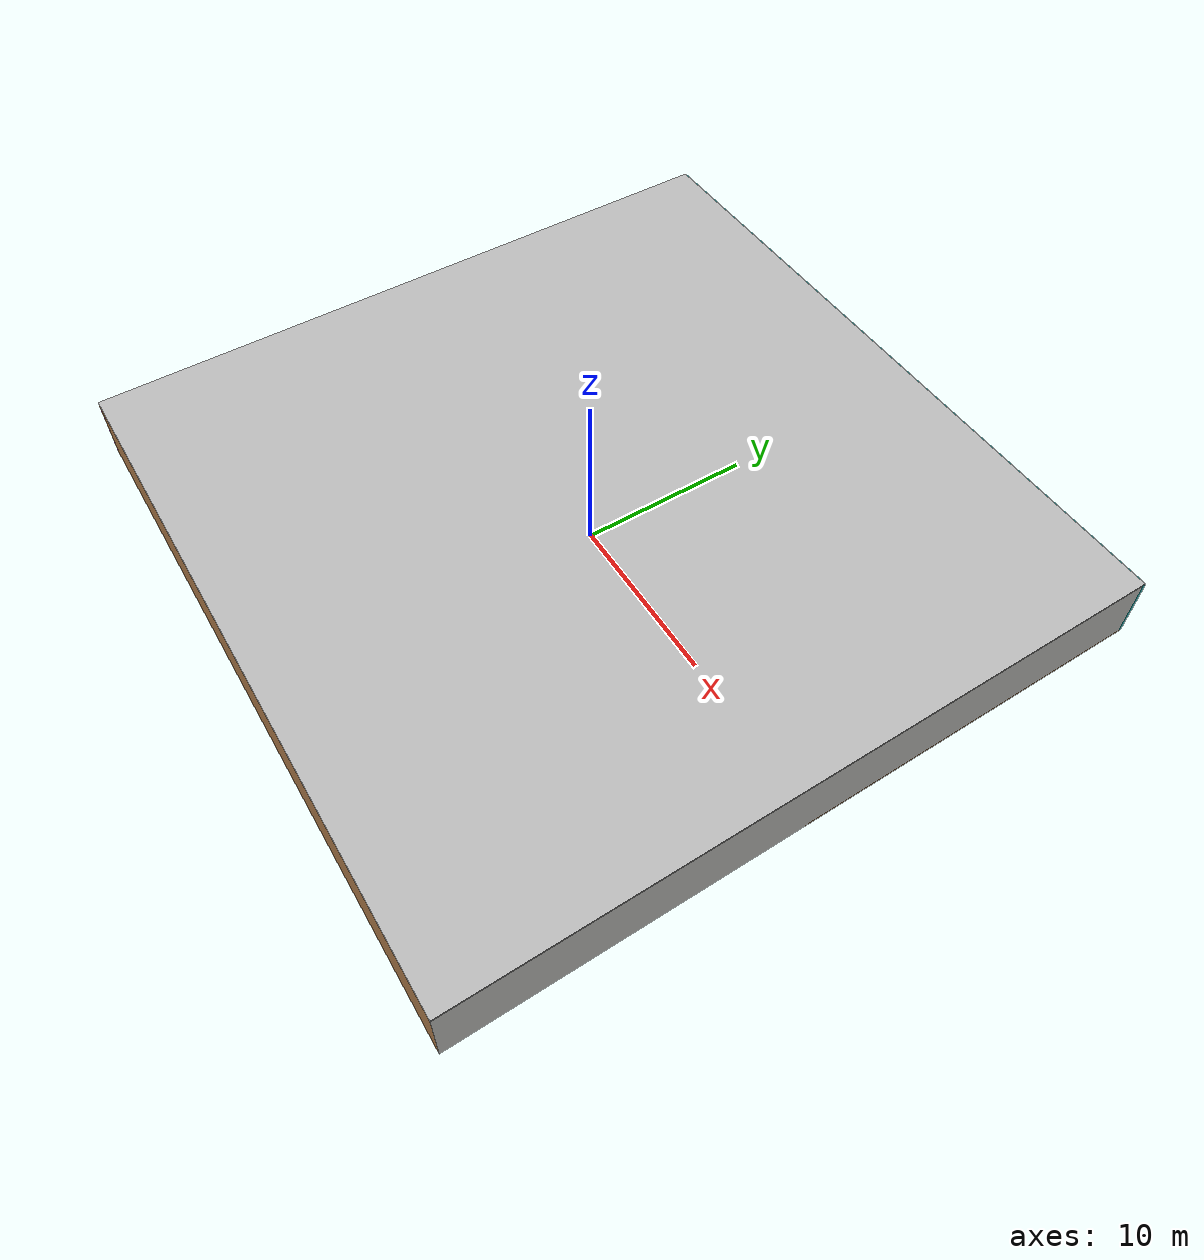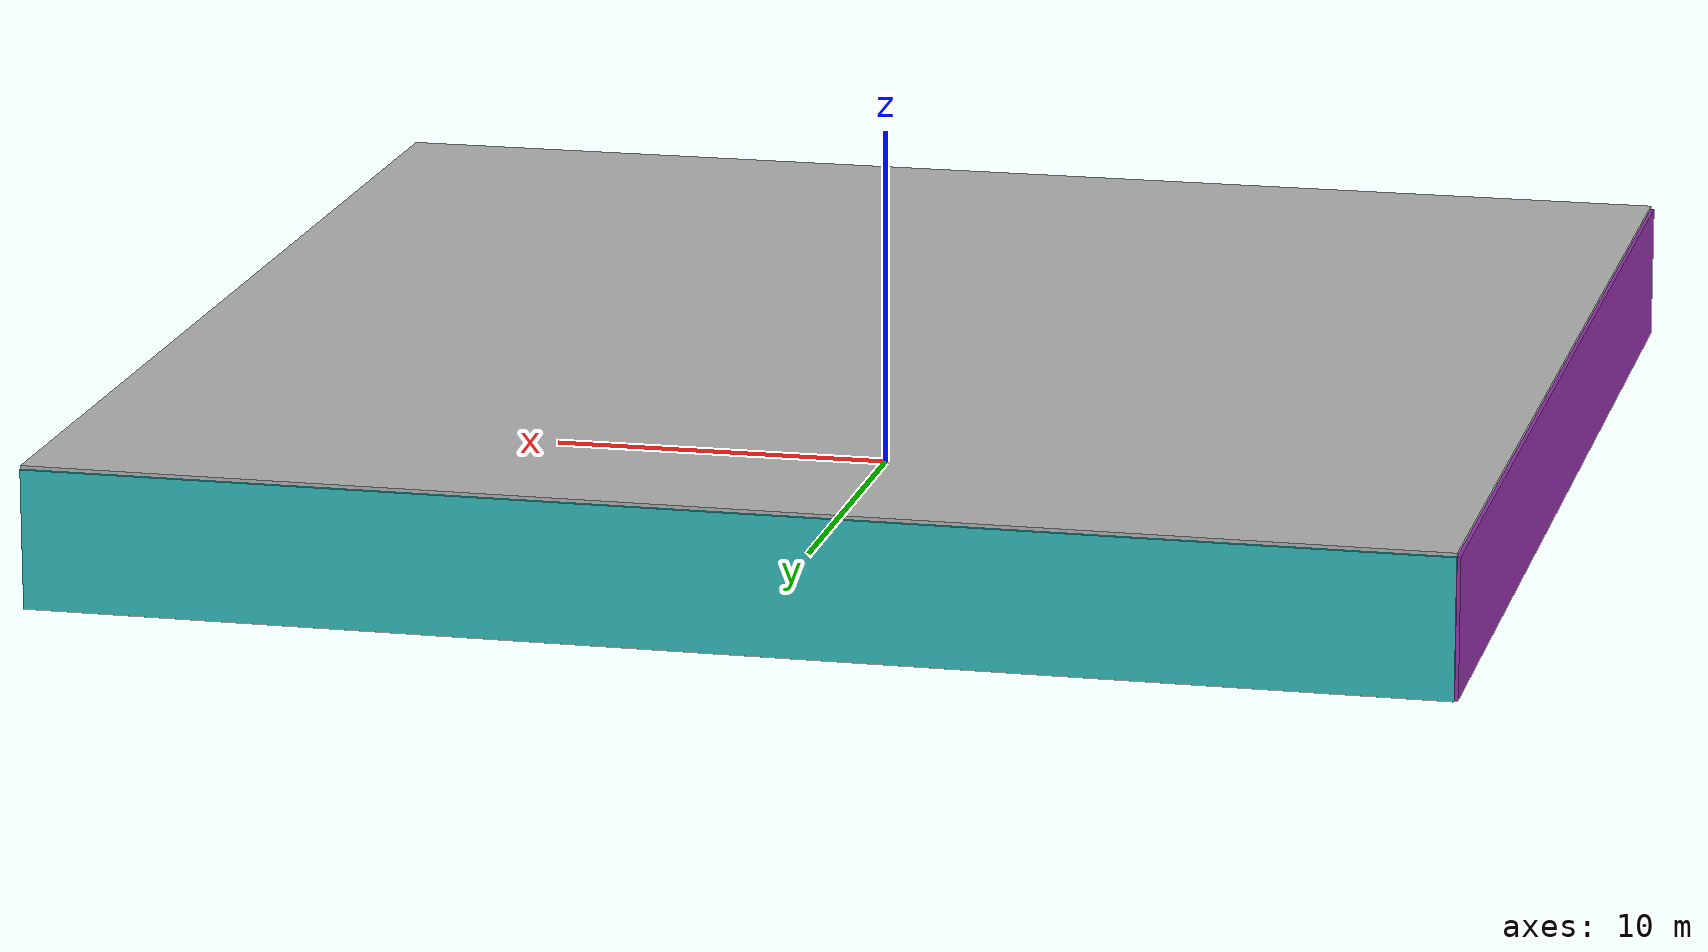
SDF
<sdf version="1.4">
 <world name="default">
  <physics type="ode">
   <max_step_size>0.001</max_step_size>
   <real_time_factor>1</real_time_factor>
   <real_time_update_rate>1000</real_time_update_rate>
   <gravity>0 0 -9.8</gravity>
  </physics>
  <scene><ambient>0.4 0.4 0.4 1</ambient><background>0.7 0.7 0.7 1</background><shadows>1</shadows></scene>
  <model name="Surrounding">
   <static>1</static>
   <link name="Ceiling">
    <collision name="Ceiling_Collision"><geometry><box><size>40 40 0.1</size></box></geometry></collision>
    <visual name="Ceiling_Visual">
     <geometry><box><size>40 40 0.1</size></box></geometry>
     <material>
      <script><uri>file://media/materials/scripts/gazebo.material</uri><name>Gazebo/CloudySky</name></script>
     </material>
    </visual>
    <pose>0 0 4.05 0 0 0</pose>
   </link>
   <link name="Wall_South">
    <collision name="Wall_South_Collision">
     <geometry><box><size>40 0 4</size></box></geometry>
     <pose>0 0 2 0 -0 0</pose>
    </collision>
    <visual name="Wall_South_Visual">
     <pose>0 0 2 0 -0 0</pose>
     <geometry><box><size>40 0 4</size></box></geometry>
     <material>
      <script><uri>file://media/materials/scripts/gazebo.material</uri><name>Gazebo/WoodPallet</name></script>
     </material>
    </visual>
    <velocity_decay><linear>0</linear><angular>0</angular></velocity_decay>
    <pose>0 -20 0 0 -0 0</pose>
   </link>
   <link name="Wall_East">
    <collision name="Wall_21_Collision">
     <geometry><box><size>40 0 4</size></box></geometry>
     <pose>0 0 2 0 -0 0</pose>
    </collision>
    <visual name="Wall_21_Visual">
     <pose>0 0 2 0 -0 0</pose>
     <geometry><box><size>40 0 4</size></box></geometry>
     <material>
      <script><uri>file://media/materials/scripts/gazebo.material</uri><name>Gazebo/CeilingTiled</name></script>
     </material>
    </visual>
    <velocity_decay><linear>0</linear><angular>0</angular></velocity_decay>
    <pose>20 0 0 0 -0 1.5708</pose>
   </link>
   <link name="Wall_North">
    <collision name="Wall_22_Collision">
     <geometry><box><size>40 0.2 4</size></box></geometry>
     <pose>0 0 2 0 -0 0</pose>
    </collision>
    <visual name="Wall_22_Visual">
     <pose>0 0 2 0 -0 0</pose>
     <geometry><box><size>40 0.2 4</size></box></geometry>
     <material>
      <script>
       <uri>file://media/materials/scripts/gazebo.material</uri>
       <name>Gazebo/TurquoiseGlowOutline</name>
      </script>
     </material>
    </visual>
    <velocity_decay><linear>0</linear><angular>0</angular></velocity_decay>
    <pose>0 20 0 0 -0 0</pose>
   </link>
   <link name="Wall_West">
    <collision name="Wall_23_Collision">
     <geometry><box><size>40 0.2 4</size></box></geometry>
     <pose>0 0 2 0 -0 0</pose>
    </collision>
    <visual name="Wall_23_Visual">
     <pose>0 0 2 0 -0 0</pose>
     <geometry><box><size>40 0.2 4</size></box></geometry>
     <material>
      <script><uri>file://media/materials/scripts/gazebo.material</uri><name>Gazebo/Purple</name></script>
     </material>
    </visual>
    <velocity_decay><linear>0</linear><angular>0</angular></velocity_decay>
    <pose>-20 0 0 0 0 -1.5708</pose>
   </link>
   <link name="Ground_link">
    <collision name="collision">
     <pose>0 0 .05 0 -0 0</pose>
     <geometry><box><size>40 40 0.1</size></box></geometry>
    </collision>
    <visual name="visual">
     <pose>0 0 .05 0 -0 0</pose>
     <geometry><box><size>40 40 0.1</size></box></geometry>
     <material>
      <script><uri>file://media/materials/scripts/gazebo.material</uri><name>Gazebo/WoodPallet</name></script>
     </material>
    </visual>
   </link>
   <static>1</static>
  </model>
  <spherical_coordinates>
   <surface_model>EARTH_WGS84</surface_model>
   <latitude_deg>0</latitude_deg>
   <longitude_deg>0</longitude_deg>
   <elevation>0</elevation>
   <heading_deg>0</heading_deg>
  </spherical_coordinates>
  <light name="lightball_0" type="diffuse">
   <diffuse>0.8 0.8 0.8 1</diffuse>
   <specular>0.2 0.2 0.2 1</specular>
   <attenuation>
    <range>100</range>
    <constant>0.7</constant>
    <linear>0.01</linear>
    <quadratic>0.001</quadratic>
   </attenuation>
   <direction>-0.5 0.1 -0.9</direction>
   <pose>10.6251174409 9.62976961261 2.75393460292 0 0 0</pose>
  </light>
  <light name="lightball_1" type="diffuse">
   <diffuse>0.8 0.8 0.8 1</diffuse>
   <specular>0.2 0.2 0.2 1</specular>
   <attenuation>
    <range>100</range>
    <constant>0.7</constant>
    <linear>0.01</linear>
    <quadratic>0.001</quadratic>
   </attenuation>
   <direction>-0.5 0.1 -0.9</direction>
   <pose>-5.81529882356 15.0518499174 3.48778081482 0 0 0</pose>
  </light>
  <light name="lightball_2" type="diffuse">
   <diffuse>0.8 0.8 0.8 1</diffuse>
   <specular>0.2 0.2 0.2 1</specular>
   <attenuation>
    <range>100</range>
    <constant>0.7</constant>
    <linear>0.01</linear>
    <quadratic>0.001</quadratic>
   </attenuation>
   <direction>-0.5 0.1 -0.9</direction>
   <pose>4.1988769799 -19.9813618187 0.610741508437 0 0 0</pose>
  </light>
  <include>
   <uri>model://construction_cone</uri>
   <pose>-17.2822594923 -18.0082591152 0 0 0 1.07953572197</pose>
  </include>
  <include><uri>model://cabinet</uri><pose>-18.2543331975 -6.04528241014 0 0 0 2.11370294663</pose></include>
  <include><uri>model://cabinet</uri><pose>-13.4705652175 10.5679757213 0 0 0 2.31735484424</pose></include>
  <include>
   <uri>model://construction_cone</uri>
   <pose>-14.036074145 11.7524080176 0 0 0 2.42843641175</pose>
  </include>
  <include><uri>model://table</uri><pose>-10.8225008917 -11.2212592076 0 0 0 0.227620340434</pose></include>
  <include>
   <uri>model://robocup_3Dsim_goal</uri>
   <pose>-12.199636014 -9.60101825559 0 0 0 2.10553983762</pose>
  </include>
  <include><uri>model://table</uri><pose>-9.11710983976 -13.9129501596 0 0 0 1.90684093336</pose></include>
  <include>
   <uri>model://construction_cone</uri>
   <pose>-8.63780955394 -5.52286250504 0 0 0 0.483153723276</pose>
  </include>
  <include>
   <uri>model://construction_cone</uri>
   <pose>-8.16220355273 -3.31566757001 0 0 0 1.02979968827</pose>
  </include>
  <include><uri>model://cabinet</uri><pose>-9.36267124359 14.8370024976 0 0 0 0.868673186699</pose></include>
  <include><uri>model://cabinet</uri><pose>-6.31836439762 -18.0959684838 0 0 0 1.71992299847</pose></include>
  <include>
   <uri>model://construction_cone</uri>
   <pose>-4.57720864385 -2.42235027976 0 0 0 0.150349311747</pose>
  </include>
  <include>
   <uri>model://robocup_3Dsim_goal</uri>
   <pose>-6.04048474044 1.6067924188 0 0 0 2.90986928512</pose>
  </include>
  <include>
   <uri>model://construction_cone</uri>
   <pose>-2.12708196746 -15.6742184319 0 0 0 2.70925795207</pose>
  </include>
  <include>
   <uri>model://robocup_3Dsim_goal</uri>
   <pose>-3.38621541256 -4.4937489058 0 0 0 0.744131293282</pose>
  </include>
  <include>
   <uri>model://textured_shapes</uri>
   <pose>-2.8073578937 13.3578046436 0 0 0 2.71925028982</pose>
  </include>
  <include>
   <uri>model://robocup_3Dsim_goal</uri>
   <pose>0.707551710655 17.7205135846 0 0 0 1.43283681522</pose>
  </include>
  <include><uri>model://table</uri><pose>3.61008532029 -7.47793984224 0 0 0 1.59192038261</pose></include>
  <include>
   <uri>model://robocup_3Dsim_goal</uri>
   <pose>3.86847377705 16.2897403537 0 0 0 1.90343314694</pose>
  </include>
  <include><uri>model://cabinet</uri><pose>5.68339299484 -16.3957883194 0 0 0 2.40484355066</pose></include>
  <include>
   <uri>model://construction_cone</uri>
   <pose>6.92044097761 -0.134203580649 0 0 0 1.08560584641</pose>
  </include>
  <include>
   <uri>model://robocup_3Dsim_goal</uri>
   <pose>6.46792528983 18.378731364 0 0 0 0.799315214458</pose>
  </include>
  <include><uri>model://table</uri><pose>9.94401829491 -18.6461355312 0 0 0 1.09830107348</pose></include>
  <include><uri>model://cabinet</uri><pose>9.8465843274 -6.52489843582 0 0 0 1.54089796484</pose></include>
  <include>
   <uri>model://construction_cone</uri>
   <pose>13.0555932046 -7.56448413571 0 0 0 1.91778804739</pose>
  </include>
  <include>
   <uri>model://construction_cone</uri>
   <pose>11.381041817 3.64878173498 0 0 0 2.16686541261</pose>
  </include>
  <include>
   <uri>model://textured_shapes</uri>
   <pose>11.7751015781 10.1309145865 0 0 0 1.63879100375</pose>
  </include>
  <include><uri>model://cabinet</uri><pose>12.8008892217 13.5362401664 0 0 0 1.21845105831</pose></include>
  <include><uri>model://table</uri><pose>11.7277415924 14.8575683892 0 0 0 2.57184171251</pose></include>
  <include><uri>model://table</uri><pose>15.8083414976 2.47213915961 0 0 0 0.619584019161</pose></include>
  <include>
   <uri>model://robocup_3Dsim_goal</uri>
   <pose>18.7559482649 -13.656783509 0 0 0 2.57399462428</pose>
  </include>
  <include><uri>model://cabinet</uri><pose>18.8351141098 -10.9649519057 0 0 0 2.27038717228</pose></include>
  <include>
   <uri>model://robocup_3Dsim_goal</uri>
   <pose>18.8435174928 -8.89205837309 0 0 0 1.42657086323</pose>
  </include>
  <include><uri>model://cabinet</uri><pose>17.9831181248 14.5797748151 0 0 0 2.58686364756</pose></include>
 </world>
</sdf>

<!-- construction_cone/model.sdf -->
<sdf version="1.5">
  <model name="Construction Cone">
    <link name="link">
      <collision name="collision">
        <geometry>
          <mesh>
            <scale>10 10 10</scale>
            <uri>file://isr-testbed/construction_cone/meshes/construction_cone.dae</uri>
          </mesh>
        </geometry>
      </collision>
      <visual name="visual">
        <geometry>
          <mesh>
            <scale>10 10 10</scale>
            <uri>file://isr-testbed/construction_cone/meshes/construction_cone.dae</uri>
          </mesh>
        </geometry>
      </visual>
    </link>
  </model>
</sdf>

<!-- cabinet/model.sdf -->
<sdf version="1.5">
  <model name="cabinet">
    <static>true</static>
    <link name="cabinet_bottom_plate">
      <inertial>
        <pose>0 0 -1 0 0 0</pose>
        <inertia>
          <ixx>2.050000</ixx>
          <ixy>0</ixy>
          <ixz>0</ixz>
          <iyy>2.050000</iyy>
          <iyz>0</iyz>
          <izz>2.050000</izz>
        </inertia>
        <mass>25.000000</mass>
      </inertial>
      <collision name="cabinet_bottom_plate_geom">
        <pose>0 0 0.010000 0 0 0</pose>
        <geometry>
          <box>
            <size>0.450000 0.450000 0.020000</size>
          </box>
        </geometry>
      </collision>
      <visual name="cabinet_bottom_plate_geom_visual">
        <pose>0 0 0.010000 0 0 0</pose>
        <geometry>
          <box>
            <size>0.450000 0.450000 0.020000</size>
          </box>
        </geometry>
        <material>
          <script>
            <uri>model://media/materials/scripts/gazebo.material</uri>
            <name>Gazebo/Wood</name>
          </script>
        </material>
      </visual>
      <collision name="cabinet_bottom_plate_geom_cabinet_back_plate">
        <pose>0.235000 0 0.510000 0 0 0</pose>
        <geometry>
          <box>
            <size>0.020000 0.450000 1.020000</size>
          </box>
        </geometry>
      </collision>
      <visual name="cabinet_bottom_plate_geom_cabinet_back_plate_visual">
        <pose>0.235000 0 0.510000 0 0 0</pose>
        <geometry>
          <box>
            <size>0.020000 0.450000 1.020000</size>
          </box>
        </geometry>
        <material>
          <script>
            <uri>model://media/materials/scripts/gazebo.material</uri>
            <name>Gazebo/Wood</name>
          </script>
        </material>
      </visual>
      <collision name="cabinet_bottom_plate_geom_cabinet_left_plate">
        <pose>0 0.235000 0.510000 0 0 0</pose>
        <geometry>
          <box>
            <size>0.450000 0.020000 1.020000</size>
          </box>
        </geometry>
      </collision>
      <visual name="cabinet_bottom_plate_geom_cabinet_left_plate_visual">
        <pose>0 0.235000 0.510000 0 0 0</pose>
        <geometry>
          <box>
            <size>0.450000 0.020000 1.020000</size>
          </box>
        </geometry>
        <material>
          <script>
            <uri>model://media/materials/scripts/gazebo.material</uri>
            <name>Gazebo/Wood</name>
          </script>
        </material>
      </visual>
      <collision name="cabinet_bottom_plate_geom_cabinet_middle_plate">
        <pose>0 0 0.510000 0 0 0</pose>
        <geometry>
          <box>
            <size>0.450000 0.450000 0.020000</size>
          </box>
        </geometry>
      </collision>
      <visual name="cabinet_bottom_plate_geom_cabinet_middle_plate_visual">
        <pose>0 0 0.510000 0 0 0</pose>
        <geometry>
          <box>
            <size>0.450000 0.450000 0.020000</size>
          </box>
        </geometry>
        <material>
          <script>
            <uri>model://media/materials/scripts/gazebo.material</uri>
            <name>Gazebo/Wood</name>
          </script>
        </material>
      </visual>
      <collision name="cabinet_bottom_plate_geom_cabinet_right_plate">
        <pose>0 -0.235000 0.510000 0 0 0</pose>
        <geometry>
          <box>
            <size>0.450000 0.020000 1.020000</size>
          </box>
        </geometry>
      </collision>
      <visual name="cabinet_bottom_plate_geom_cabinet_right_plate_visual">
        <pose>0 -0.235000 0.510000 0 0 0</pose>
        <geometry>
          <box>
            <size>0.450000 0.020000 1.020000</size>
          </box>
        </geometry>
        <material>
          <script>
            <uri>model://media/materials/scripts/gazebo.material</uri>
            <name>Gazebo/Wood</name>
          </script>
        </material>
      </visual>
      <collision name="cabinet_bottom_plate_geom_cabinet_top_plate">
        <pose>0 0 1.010000 0 0 0</pose>
        <geometry>
          <box>
            <size>0.450000 0.450000 0.020000</size>
          </box>
        </geometry>
      </collision>
      <visual name="cabinet_bottom_plate_geom_cabinet_top_plate_visual">
        <pose>0 0 1.010000 0 0 0</pose>
        <geometry>
          <box>
            <size>0.450000 0.450000 0.020000</size>
          </box>
        </geometry>
        <material>
          <script>
            <uri>model://media/materials/scripts/gazebo.material</uri>
            <name>Gazebo/Wood</name>
          </script>
        </material>
      </visual>
    </link>
  </model>
</sdf>

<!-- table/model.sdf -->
<sdf version="1.5">
  <model name="table">
    <static>true</static>
    <link name="link">
      <collision name="surface">
        <pose>0 0 1.0 0 0 0</pose>
        <geometry>
          <box>
            <size>1.5 0.8 0.03</size>
          </box>
        </geometry>
        <surface>
          <friction>
            <ode>
              <mu>0.6</mu>
              <mu2>0.6</mu2>
            </ode>
          </friction>
        </surface>
      </collision>
      <visual name="visual1">
        <pose>0 0 1.0 0 0 0</pose>
        <geometry>
          <box>
            <size>1.5 0.8 0.03</size>
          </box>
        </geometry>
        <material>
          <script>
            <uri>model://media/materials/scripts/gazebo.material</uri>
            <name>Gazebo/Wood</name>
          </script>
        </material>
      </visual>
      <collision name="front_left_leg">
        <pose>0.68 0.38 0.5 0 0 0</pose>
        <geometry>
          <cylinder>
            <radius>0.02</radius>
            <length>1.0</length>
          </cylinder>
        </geometry>
      </collision>
      <visual name="front_left_leg">
        <pose>0.68 0.38 0.5 0 0 0</pose>
        <geometry>
          <cylinder>
            <radius>0.02</radius>
            <length>1.0</length>
          </cylinder>
        </geometry>
        <material>
          <script>
            <uri>model://media/materials/scripts/gazebo.material</uri>
            <name>Gazebo/Grey</name>
          </script>
        </material>
      </visual>
      <collision name="front_right_leg">
        <pose>0.68 -0.38 0.5 0 0 0</pose>
        <geometry>
          <cylinder>
            <radius>0.02</radius>
            <length>1.0</length>
          </cylinder>
        </geometry>
      </collision>
      <visual name="front_right_leg">
        <pose>0.68 -0.38 0.5 0 0 0</pose>
        <geometry>
          <cylinder>
            <radius>0.02</radius>
            <length>1.0</length>
          </cylinder>
        </geometry>
        <material>
          <script>
            <uri>model://media/materials/scripts/gazebo.material</uri>
            <name>Gazebo/Grey</name>
          </script>
        </material>
      </visual>
      <collision name="back_right_leg">
        <pose>-0.68 -0.38 0.5 0 0 0</pose>
        <geometry>
          <cylinder>
            <radius>0.02</radius>
            <length>1.0</length>
          </cylinder>
        </geometry>
      </collision>
      <visual name="back_right_leg">
        <pose>-0.68 -0.38 0.5 0 0 0</pose>
        <geometry>
          <cylinder>
            <radius>0.02</radius>
            <length>1.0</length>
          </cylinder>
        </geometry>
        <material>
          <script>
            <uri>model://media/materials/scripts/gazebo.material</uri>
            <name>Gazebo/Grey</name>
          </script>
        </material>
      </visual>
      <collision name="back_left_leg">
        <pose>-0.68 0.38 0.5 0 0 0</pose>
        <geometry>
          <cylinder>
            <radius>0.02</radius>
            <length>1.0</length>
          </cylinder>
        </geometry>
      </collision>
      <visual name="back_left_leg">
        <pose>-0.68 0.38 0.5 0 0 0</pose>
        <geometry>
          <cylinder>
            <radius>0.02</radius>
            <length>1.0</length>
          </cylinder>
        </geometry>
        <material>
          <script>
            <uri>model://media/materials/scripts/gazebo.material</uri>
            <name>Gazebo/Grey</name>
          </script>
        </material>
      </visual>
    </link>
  </model>
</sdf>

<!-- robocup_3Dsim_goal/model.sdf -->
<sdf version="1.5">
  <model name="robocup_3d_goal">
    <static>true</static>
    <link name="left_post">
      <pose>0 1.05 0.45 0 0 0</pose>
      <collision name="collision">
        <geometry>
          <cylinder>
            <radius>0.05</radius>
            <length>0.9</length>
          </cylinder>
        </geometry>
      </collision>
      <visual name="visual">
        <geometry>
          <cylinder>
            <radius>0.05</radius>
            <length>0.9</length>
          </cylinder>
        </geometry>
        <material>
          <script>
            <uri>file://media/materials/scripts/gazebo.material</uri>
            <name>Gazebo/ZincYellow</name>
          </script>
        </material>
      </visual>
    </link>
    <link name="left_support_horiz_lower">
      <pose>0.30 1.05 0.01 0 0 0</pose>
      <collision name="collision">
        <geometry>
          <box>
            <size>0.50 0.02 0.02</size>
          </box>
        </geometry>
      </collision>
      <visual name="visual">
        <geometry>
          <box>
            <size>0.50 0.02 0.02</size>
          </box>
        </geometry>
        <material>
          <script>
            <uri>file://media/materials/scripts/gazebo.material</uri>
            <name>Gazebo/White</name>
          </script>
        </material>
      </visual>
    </link>
    <link name="left_support_horiz_upper">
      <pose>0.30 1.05 0.79 0 0 0</pose>
      <collision name="collision">
        <geometry>
          <box>
            <size>0.50 0.02 0.02</size>
          </box>
        </geometry>
      </collision>
      <visual name="visual">
        <geometry>
          <box>
            <size>0.50 0.02 0.02</size>
          </box>
        </geometry>
        <material>
          <script>
            <uri>file://media/materials/scripts/gazebo.material</uri>
            <name>Gazebo/White</name>
          </script>
        </material>
      </visual>
    </link>
    <link name="left_support_vertical">
      <pose>0.56 1.05 0.4 0 1.5708 0</pose>
      <collision name="collision">
        <geometry>
          <box>
            <size>0.80 0.02 0.02</size>
          </box>
        </geometry>
      </collision>
      <visual name="visual">
        <geometry>
          <box>
            <size>0.80 0.02 0.02</size>
          </box>
        </geometry>
        <material>
          <script>
            <uri>file://media/materials/scripts/gazebo.material</uri>
            <name>Gazebo/White</name>
          </script>
        </material>
      </visual>
    </link>
    <link name="right_support_horiz_lower">
      <pose>0.30 -1.05 0.01 0 0 0</pose>
      <collision name="collision">
        <geometry>
          <box>
            <size>0.50 0.02 0.02</size>
          </box>
        </geometry>
      </collision>
      <visual name="visual">
        <geometry>
          <box>
            <size>0.50 0.02 0.02</size>
          </box>
        </geometry>
        <material>
          <script>
            <uri>file://media/materials/scripts/gazebo.material</uri>
            <name>Gazebo/White</name>
          </script>
        </material>
      </visual>
    </link>
    <link name="right_support_horiz_upper">
      <pose>0.30 -1.05 0.79 0 0 0</pose>
      <collision name="collision">
        <geometry>
          <box>
            <size>0.50 0.02 0.02</size>
          </box>
        </geometry>
      </collision>
      <visual name="visual">
        <geometry>
          <box>
            <size>0.50 0.02 0.02</size>
          </box>
        </geometry>
        <material>
          <script>
            <uri>file://media/materials/scripts/gazebo.material</uri>
            <name>Gazebo/White</name>
          </script>
        </material>
      </visual>
    </link>
    <link name="right_support_vertical">
      <pose>0.56 -1.05 0.4 0 1.5708 0</pose>
      <collision name="collision">
        <geometry>
          <box>
            <size>0.80 0.02 0.02</size>
          </box>
        </geometry>
      </collision>
      <visual name="visual">
        <geometry>
          <box>
            <size>0.80 0.02 0.02</size>
          </box>
        </geometry>
        <material>
          <script>
            <uri>file://media/materials/scripts/gazebo.material</uri>
            <name>Gazebo/White</name>
          </script>
        </material>
      </visual>
    </link>
    <link name="center_support_horiz_lower">
      <pose>0.56 0 0.01 0 1.5708 0</pose>
      <collision name="collision">
        <geometry>
          <box>
            <size>0.02 2.08 0.02</size>
          </box>
        </geometry>
      </collision>
      <visual name="visual">
        <geometry>
          <box>
            <size>0.02 2.08 0.02</size>
          </box>
        </geometry>
        <material>
          <script>
            <uri>file://media/materials/scripts/gazebo.material</uri>
            <name>Gazebo/White</name>
          </script>
        </material>
      </visual>
    </link>
    <link name="center_support_horiz_upper">
      <pose>0.56 0 0.79 0 1.5708 0</pose>
      <collision name="collision">
        <geometry>
          <box>
            <size>0.02 2.08 0.02</size>
          </box>
        </geometry>
      </collision>
      <visual name="visual">
        <geometry>
          <box>
            <size>0.02 2.08 0.02</size>
          </box>
        </geometry>
        <material>
          <script>
            <uri>file://media/materials/scripts/gazebo.material</uri>
            <name>Gazebo/White</name>
          </script>
        </material>
      </visual>
    </link>
    <link name="right_post">
      <pose>0 -1.05 0.45 0 0 0</pose>
      <collision name="collision">
        <geometry>
          <cylinder>
            <radius>0.05</radius>
            <length>0.9</length>
          </cylinder>
        </geometry>
      </collision>
      <visual name="visual">
        <geometry>
          <cylinder>
            <radius>0.05</radius>
            <length>0.9</length>
          </cylinder>
        </geometry>
        <material>
          <script>
            <uri>file://media/materials/scripts/gazebo.material</uri>
            <name>Gazebo/ZincYellow</name>
          </script>
        </material>
      </visual>
    </link>
    <link name="crossbar">
      <pose>0 0 0.85 1.57 1.57 0</pose>
      <collision name="collision">
        <geometry>
          <cylinder>
            <radius>0.05</radius>
            <length>2.0</length>
          </cylinder>
        </geometry>
      </collision>
      <visual name="visual">
        <geometry>
          <cylinder>
            <radius>0.05</radius>
            <length>2.0</length>
          </cylinder>
        </geometry>
        <material>
          <script>
            <uri>file://media/materials/scripts/gazebo.material</uri>
            <name>Gazebo/ZincYellow</name>
          </script>
        </material>
      </visual>
    </link>
    <link name="center_net">
      <pose>0.56 0 0.40 0 0 0</pose>
      <collision name="collision">
        <geometry>
          <box>
            <size>0.01 2.1 0.80</size>
          </box>
        </geometry>
      </collision>
      <visual name="visual">
        <geometry>
          <box>
            <size>0.01 2.1 0.80</size>
          </box>
        </geometry>
        <material>
          <script>
            <uri>model://../model_source/models/robocup09_spl_field/materials/scripts/</uri>
            <uri>model://../model_source/models/robocup09_spl_field/materials/textures/</uri>
            <name>RoboCup/Net</name>
          </script>
        </material>
      </visual>
    </link>
    <link name="left_net">
      <pose>0.30 1.05 0.40 0 0 0</pose>
      <collision name="collision">
        <geometry>
          <box>
            <size>0.50 0.01 0.76</size>
          </box>
        </geometry>
      </collision>
      <visual name="visual">
        <geometry>
          <box>
            <size>0.50 0.01 0.76</size>
          </box>
        </geometry>
        <material>
          <script>
            <uri>model://../model_source/models/robocup09_spl_field/materials/scripts/</uri>
            <uri>model://../model_source/models/robocup09_spl_field/materials/textures/</uri>
            <name>RoboCup/Net</name>
          </script>
        </material>
      </visual>
    </link>
    <link name="right_net">
      <pose>0.30 -1.05 0.40 0 0 0</pose>
      <collision name="collision">
        <geometry>
          <box>
            <size>0.50 0.01 0.76</size>
          </box>
        </geometry>
      </collision>
      <visual name="visual">
        <geometry>
          <box>
            <size>0.50 0.01 0.76</size>
          </box>
        </geometry>
        <material>
          <script>
            <uri>model://../model_source/models/robocup09_spl_field/materials/scripts/</uri>
            <uri>model://../model_source/models/robocup09_spl_field/materials/textures/</uri>
            <name>RoboCup/Net</name>
          </script>
        </material>
      </visual>
    </link>
  </model>
</sdf>

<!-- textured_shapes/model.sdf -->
<sdf version="1.6">
  <model name="textured_shapes">
    <pose>0 0 0.5 0 0 0</pose>
    <link name="box">
      <pose>0 -1.5 0 0 0 0</pose>
      <collision name="collision">
        <geometry>
          <box>
            <size>1 1 1</size>
          </box>
        </geometry>
      </collision>
      <visual name="visual">
        <geometry>
          <box>
            <size>1 1 1</size>
          </box>
        </geometry>
        <material>
          <script>
            <uri>model://../model_source/models/textured_shapes/materials/scripts</uri>
            <uri>model://../model_source/models/textured_shapes/materials/textures</uri>
            <name>TexturedShape/Squares</name>
          </script>
        </material>
      </visual>
    </link>
    <link name="sphere">
      <collision name="collision">
        <geometry>
          <sphere>
            <radius>0.5</radius>
          </sphere>
        </geometry>
      </collision>
      <visual name="visual">
        <geometry>
          <sphere>
            <radius>0.5</radius>
          </sphere>
        </geometry>
        <material>
          <script>
            <uri>model://../model_source/models/textured_shapes/materials/scripts</uri>
            <uri>model://../model_source/models/textured_shapes/materials/textures</uri>
            <name>TexturedShape/Squares</name>
          </script>
        </material>
      </visual>
    </link>
    <link name="cylinder">
      <pose>0 1.5 0 0 0 0</pose>
      <collision name="collision">
        <geometry>
          <cylinder>
            <radius>0.5</radius>
            <length>1</length>
          </cylinder>
        </geometry>
      </collision>
      <visual name="visual">
        <geometry>
          <cylinder>
            <radius>0.5</radius>
            <length>1</length>
          </cylinder>
        </geometry>
        <material>
          <script>
            <uri>model://../model_source/models/textured_shapes/materials/scripts</uri>
            <uri>model://../model_source/models/textured_shapes/materials/textures</uri>
            <name>TexturedShape/Squares</name>
          </script>
        </material>
      </visual>
    </link>
  </model>
</sdf>
